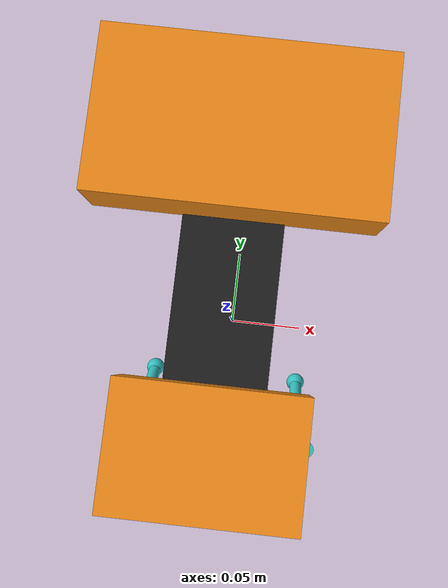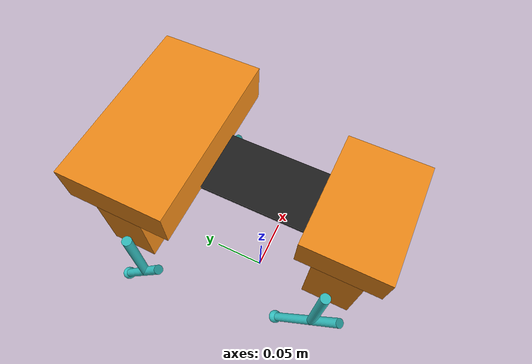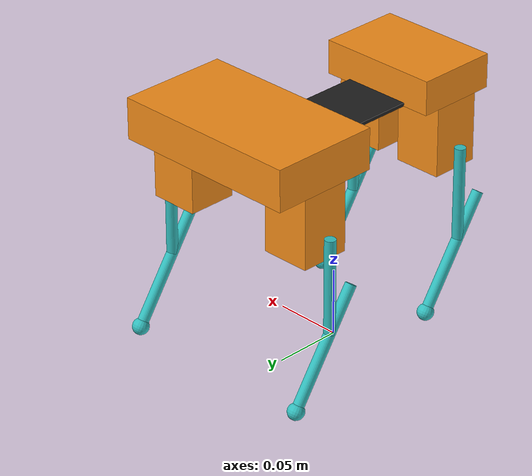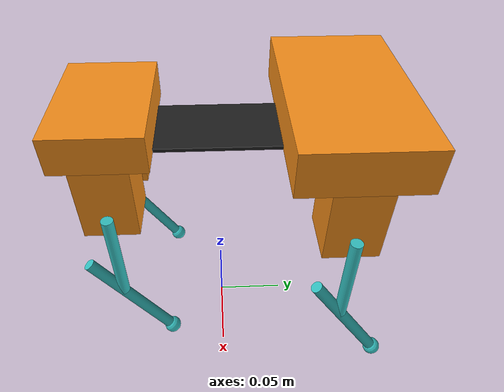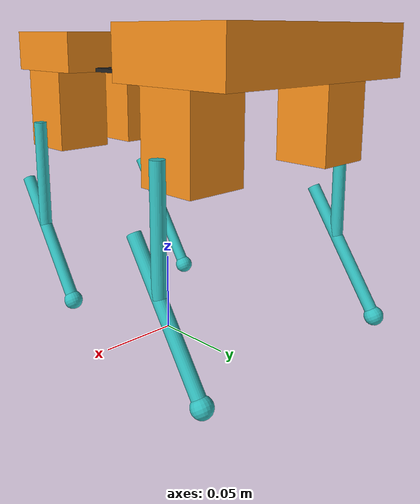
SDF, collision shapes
<?xml version='1.0' encoding='ASCII'?>
<sdf version="1.4">
  <model name="tigrillo">
    <static>False</static>
    <self_collide>False</self_collide>
    <link name="body_front">
      <pose>0 0.08 0.185 0 0 0</pose>
      <inertial>
        <mass>0.3</mass>
        <inertia>
          <ixx>0.0001825</ixx>
          <ixy>0</ixy>
          <ixz>0</ixz>
          <iyy>0.0005125</iyy>
          <iyz>0</iyz>
          <izz>0.00065</izz>
        </inertia>
      </inertial>
      <collision name="body_frontcol">
        <geometry>
          <box>
            <size>0.14 0.08 0.03</size>
          </box>
        </geometry>
      </collision>
      <visual name="body_frontvis">
        <pose>0 0.018 -0.018 0 0 -1.57079632679</pose>
        <geometry>
          <mesh>
            <uri>model://tigrillo/meshes/front.dae</uri>
            <scale>0.001 0.001 0.001</scale>
          </mesh>
        </geometry>
        <material>
          <script>
            <uri>file://media/materials/scripts/gazebo.material</uri>
            <name>Gazebo/Orange</name>
          </script>
        </material>
      </visual>
    </link>
    <link name="body_middle">
      <pose>0 0 0.17125 0 0 0</pose>
      <inertial>
        <mass>0.03</mass>
        <inertia>
          <ixx>1.6015625e-05</ixx>
          <ixy>0</ixy>
          <ixz>0</ixz>
          <iyy>6.265625e-06</iyy>
          <iyz>0</iyz>
          <izz>2.225e-05</izz>
        </inertia>
      </inertial>
      <collision name="body_middlecol">
        <geometry>
          <box>
            <size>0.05 0.08 0.0025</size>
          </box>
        </geometry>
      </collision>
      <visual name="body_middlevis">
        <pose>0 0 -0.004 0 0 -1.57079632679</pose>
        <geometry>
          <mesh>
            <uri>model://tigrillo/meshes/middle.dae</uri>
            <scale>0.001 0.001 0.001</scale>
          </mesh>
        </geometry>
        <material>
          <script>
            <uri>file://media/materials/scripts/gazebo.material</uri>
            <name>Gazebo/FlatBlack</name>
          </script>
        </material>
      </visual>
    </link>
    <link name="body_hind">
      <pose>0 -0.07 0.1825 0 0 0</pose>
      <inertial>
        <mass>0.1</mass>
        <inertia>
          <ixx>3.52083333333e-05</ixx>
          <ixy>0</ixy>
          <ixz>0</ixz>
          <iyy>7.27083333333e-05</iyy>
          <iyz>0</iyz>
          <izz>9.75e-05</izz>
        </inertia>
      </inertial>
      <collision name="body_hindcol">
        <geometry>
          <box>
            <size>0.09 0.06 0.025</size>
          </box>
        </geometry>
      </collision>
      <visual name="body_hindvis">
        <pose>0 0 -0.016 0 0 -1.57079632679</pose>
        <geometry>
          <mesh>
            <uri>model://tigrillo/meshes/hind.dae</uri>
            <scale>0.001 0.0009 0.001</scale>
          </mesh>
        </geometry>
        <material>
          <script>
            <uri>file://media/materials/scripts/gazebo.material</uri>
            <name>Gazebo/Orange</name>
          </script>
        </material>
      </visual>
    </link>
    <link name="BLM">
      <pose>-0.027 -0.07 0.1447 0 0 0</pose>
      <inertial>
        <mass>0.067</mass>
        <inertia>
          <ixx>2.15313433333e-05</ixx>
          <ixy>0</ixy>
          <ixz>0</ixz>
          <iyy>2.15313433333e-05</iyy>
          <iyz>0</iyz>
          <izz>1.4472e-05</izz>
        </inertia>
      </inertial>
      <collision name="BLM_col">
        <geometry>
          <box>
            <size>0.036 0.036 0.0506</size>
          </box>
        </geometry>
      </collision>
      <visual name="BLM_vis">
        <pose>0 0 0 -1.57079632679 0 1.57079632679</pose>
        <geometry>
          <mesh>
            <uri>model://tigrillo/meshes/motor.dae</uri>
            <scale>0.001 0.001 0.001</scale>
          </mesh>
        </geometry>
        <material>
          <script>
            <uri>file://media/materials/scripts/gazebo.material</uri>
            <name>Gazebo/Orange</name>
          </script>
        </material>
      </visual>
    </link>
    <link name="BLU">
      <pose>-0.0495 -0.07 0.137 0.00436332312999 0 0</pose>
      <inertial>
        <pose>0 0 -0.035 0 0 0</pose>
        <mass>0.351858377202</mass>
        <inertia>
          <ixx>0.000145082937533</ixx>
          <ixy>0</ixy>
          <ixz>0</ixz>
          <iyy>0.000145082937533</iyy>
          <iyz>0</iyz>
          <izz>2.81486701762e-06</izz>
        </inertia>
      </inertial>
      <collision name="BLU_col">
        <pose>0 0 -0.035 0 0 0</pose>
        <geometry>
          <cylinder>
            <radius>0.004</radius>
            <length>0.07</length>
          </cylinder>
        </geometry>
      </collision>
      <visual name="BLU_vis">
        <pose>-0.0040 0 0 0 1.57079632679 0</pose>
        <geometry>
          <mesh>
            <uri>model://tigrillo/meshes/femur.dae</uri>
            <scale>0.001 0.001 0.001</scale>
          </mesh>
        </geometry>
        <material>
          <script>
            <uri>file://media/materials/scripts/gazebo.material</uri>
            <name>Gazebo/Turquoise</name>
          </script>
        </material>
      </visual>
    </link>
    <link name="BLD">
      <pose>-0.0495 -0.0696945683501 0.0670006663495 0.590048866587 0 0</pose>
      <inertial>
        <pose>0 0 -0.01 0 0 0</pose>
        <mass>0.452389342117</mass>
        <inertia>
          <ixx>0.000307172363297</ixx>
          <ixy>0</ixy>
          <ixz>0</ixz>
          <iyy>0.000307172363297</iyy>
          <iyz>0</iyz>
          <izz>3.61911473694e-06</izz>
        </inertia>
      </inertial>
      <collision name="BLDT_col">
        <pose>0 0 -0.01 0 0 0</pose>
        <geometry>
          <cylinder>
            <radius>0.004</radius>
            <length>0.09</length>
          </cylinder>
        </geometry>
      </collision>
      <visual name="BLDT_vis">
        <pose>0.004 0 -0.048-1.57079632679 0 1.57079632679</pose>
        <geometry>
          <mesh>
            <uri>model://tigrillo/meshes/tibia.dae</uri>
            <scale>0.001 0.001 0.001</scale>
          </mesh>
        </geometry>
        <material>
          <script>
            <name>Gazebo/Turquoise</name>
            <uri>file://media/materials/scripts/gazebo.material</uri>
          </script>
        </material>
      </visual>
      <collision name="BLDF_col">
        <pose> 0 0 -0.055 0 0 0</pose>
        <geometry>
          <sphere>
            <radius>0.006</radius>
          </sphere>
        </geometry>
        <surface>
          <friction>
            <ode>
              <mu>15000</mu>
              <mu2>15000</mu2>
            </ode>
          </friction>
          <contact>
            <ode>
              <min_depth>0.0005</min_depth>
            </ode>
          </contact>
        </surface>
      </collision>
    </link>
    <link name="FRM">
      <pose>0.052 0.08 0.1447 0 0 0</pose>
      <inertial>
        <mass>0.067</mass>
        <inertia>
          <ixx>2.15313433333e-05</ixx>
          <ixy>0</ixy>
          <ixz>0</ixz>
          <iyy>2.15313433333e-05</iyy>
          <iyz>0</iyz>
          <izz>1.4472e-05</izz>
        </inertia>
      </inertial>
      <collision name="FRM_col">
        <geometry>
          <box>
            <size>0.036 0.036 0.0506</size>
          </box>
        </geometry>
      </collision>
      <visual name="FRM_vis">
        <pose>0 0 0 -1.57079632679 0 -1.57079632679</pose>
        <geometry>
          <mesh>
            <uri>model://tigrillo/meshes/motor.dae</uri>
            <scale>0.001 0.001 0.001</scale>
          </mesh>
        </geometry>
        <material>
          <script>
            <uri>file://media/materials/scripts/gazebo.material</uri>
            <name>Gazebo/Orange</name>
          </script>
        </material>
      </visual>
    </link>
    <link name="FRU">
      <pose>0.0745 0.08 0.137 0.00436332312999 0 0</pose>
      <inertial>
        <pose>0 0 -0.035 0 0 0</pose>
        <mass>0.351858377202</mass>
        <inertia>
          <ixx>0.000145082937533</ixx>
          <ixy>0</ixy>
          <ixz>0</ixz>
          <iyy>0.000145082937533</iyy>
          <iyz>0</iyz>
          <izz>2.81486701762e-06</izz>
        </inertia>
      </inertial>
      <collision name="FRU_col">
        <pose>0 0 -0.035 0 0 0</pose>
        <geometry>
          <cylinder>
            <radius>0.004</radius>
            <length>0.07</length>
          </cylinder>
        </geometry>
      </collision>
      <visual name="FRU_vis">
        <pose>-0.0040 0 0 0 1.57079632679 0</pose>
        <geometry>
          <mesh>
            <uri>model://tigrillo/meshes/femur.dae</uri>
            <scale>0.001 0.001 0.001</scale>
          </mesh>
        </geometry>
        <material>
          <script>
            <uri>file://media/materials/scripts/gazebo.material</uri>
            <name>Gazebo/Turquoise</name>
          </script>
        </material>
      </visual>
    </link>
    <link name="FRD">
      <pose>0.0745 0.0803054316499 0.0670006663495 0.590048866587 0 0</pose>
      <inertial>
        <pose>0 0 -0.01 0 0 0</pose>
        <mass>0.452389342117</mass>
        <inertia>
          <ixx>0.000307172363297</ixx>
          <ixy>0</ixy>
          <ixz>0</ixz>
          <iyy>0.000307172363297</iyy>
          <iyz>0</iyz>
          <izz>3.61911473694e-06</izz>
        </inertia>
      </inertial>
      <collision name="FRDT_col">
        <pose>0 0 -0.01 0 0 0</pose>
        <geometry>
          <cylinder>
            <radius>0.004</radius>
            <length>0.09</length>
          </cylinder>
        </geometry>
      </collision>
      <visual name="FRDT_vis">
        <pose>0.004 0 -0.048-1.57079632679 0 1.57079632679</pose>
        <geometry>
          <mesh>
            <uri>model://tigrillo/meshes/tibia.dae</uri>
            <scale>0.001 0.001 0.001</scale>
          </mesh>
        </geometry>
        <material>
          <script>
            <name>Gazebo/Turquoise</name>
            <uri>file://media/materials/scripts/gazebo.material</uri>
          </script>
        </material>
      </visual>
      <collision name="FRDF_col">
        <pose> 0 0 -0.055 0 0 0</pose>
        <geometry>
          <sphere>
            <radius>0.006</radius>
          </sphere>
        </geometry>
        <surface>
          <friction>
            <ode>
              <mu>15000</mu>
              <mu2>15000</mu2>
            </ode>
          </friction>
          <contact>
            <ode>
              <min_depth>0.0005</min_depth>
            </ode>
          </contact>
        </surface>
      </collision>
    </link>
    <link name="FLM">
      <pose>-0.052 0.08 0.1447 0 0 0</pose>
      <inertial>
        <mass>0.067</mass>
        <inertia>
          <ixx>2.15313433333e-05</ixx>
          <ixy>0</ixy>
          <ixz>0</ixz>
          <iyy>2.15313433333e-05</iyy>
          <iyz>0</iyz>
          <izz>1.4472e-05</izz>
        </inertia>
      </inertial>
      <collision name="FLM_col">
        <geometry>
          <box>
            <size>0.036 0.036 0.0506</size>
          </box>
        </geometry>
      </collision>
      <visual name="FLM_vis">
        <pose>0 0 0 -1.57079632679 0 1.57079632679</pose>
        <geometry>
          <mesh>
            <uri>model://tigrillo/meshes/motor.dae</uri>
            <scale>0.001 0.001 0.001</scale>
          </mesh>
        </geometry>
        <material>
          <script>
            <uri>file://media/materials/scripts/gazebo.material</uri>
            <name>Gazebo/Orange</name>
          </script>
        </material>
      </visual>
    </link>
    <link name="FLU">
      <pose>-0.0745 0.08 0.137 0.00436332312999 0 0</pose>
      <inertial>
        <pose>0 0 -0.035 0 0 0</pose>
        <mass>0.351858377202</mass>
        <inertia>
          <ixx>0.000145082937533</ixx>
          <ixy>0</ixy>
          <ixz>0</ixz>
          <iyy>0.000145082937533</iyy>
          <iyz>0</iyz>
          <izz>2.81486701762e-06</izz>
        </inertia>
      </inertial>
      <collision name="FLU_col">
        <pose>0 0 -0.035 0 0 0</pose>
        <geometry>
          <cylinder>
            <radius>0.004</radius>
            <length>0.07</length>
          </cylinder>
        </geometry>
      </collision>
      <visual name="FLU_vis">
        <pose>-0.0040 0 0 0 1.57079632679 0</pose>
        <geometry>
          <mesh>
            <uri>model://tigrillo/meshes/femur.dae</uri>
            <scale>0.001 0.001 0.001</scale>
          </mesh>
        </geometry>
        <material>
          <script>
            <uri>file://media/materials/scripts/gazebo.material</uri>
            <name>Gazebo/Turquoise</name>
          </script>
        </material>
      </visual>
    </link>
    <link name="FLD">
      <pose>-0.0745 0.0803054316499 0.0670006663495 0.590048866587 0 0</pose>
      <inertial>
        <pose>0 0 -0.01 0 0 0</pose>
        <mass>0.452389342117</mass>
        <inertia>
          <ixx>0.000307172363297</ixx>
          <ixy>0</ixy>
          <ixz>0</ixz>
          <iyy>0.000307172363297</iyy>
          <iyz>0</iyz>
          <izz>3.61911473694e-06</izz>
        </inertia>
      </inertial>
      <collision name="FLDT_col">
        <pose>0 0 -0.01 0 0 0</pose>
        <geometry>
          <cylinder>
            <radius>0.004</radius>
            <length>0.09</length>
          </cylinder>
        </geometry>
      </collision>
      <visual name="FLDT_vis">
        <pose>0.004 0 -0.048-1.57079632679 0 1.57079632679</pose>
        <geometry>
          <mesh>
            <uri>model://tigrillo/meshes/tibia.dae</uri>
            <scale>0.001 0.001 0.001</scale>
          </mesh>
        </geometry>
        <material>
          <script>
            <name>Gazebo/Turquoise</name>
            <uri>file://media/materials/scripts/gazebo.material</uri>
          </script>
        </material>
      </visual>
      <collision name="FLDF_col">
        <pose> 0 0 -0.055 0 0 0</pose>
        <geometry>
          <sphere>
            <radius>0.006</radius>
          </sphere>
        </geometry>
        <surface>
          <friction>
            <ode>
              <mu>15000</mu>
              <mu2>15000</mu2>
            </ode>
          </friction>
          <contact>
            <ode>
              <min_depth>0.0005</min_depth>
            </ode>
          </contact>
        </surface>
      </collision>
    </link>
    <link name="BRM">
      <pose>0.027 -0.07 0.1447 0 0 0</pose>
      <inertial>
        <mass>0.067</mass>
        <inertia>
          <ixx>2.15313433333e-05</ixx>
          <ixy>0</ixy>
          <ixz>0</ixz>
          <iyy>2.15313433333e-05</iyy>
          <iyz>0</iyz>
          <izz>1.4472e-05</izz>
        </inertia>
      </inertial>
      <collision name="BRM_col">
        <geometry>
          <box>
            <size>0.036 0.036 0.0506</size>
          </box>
        </geometry>
      </collision>
      <visual name="BRM_vis">
        <pose>0 0 0 -1.57079632679 0 -1.57079632679</pose>
        <geometry>
          <mesh>
            <uri>model://tigrillo/meshes/motor.dae</uri>
            <scale>0.001 0.001 0.001</scale>
          </mesh>
        </geometry>
        <material>
          <script>
            <uri>file://media/materials/scripts/gazebo.material</uri>
            <name>Gazebo/Orange</name>
          </script>
        </material>
      </visual>
    </link>
    <link name="BRU">
      <pose>0.0495 -0.07 0.137 0.00436332312999 0 0</pose>
      <inertial>
        <pose>0 0 -0.035 0 0 0</pose>
        <mass>0.351858377202</mass>
        <inertia>
          <ixx>0.000145082937533</ixx>
          <ixy>0</ixy>
          <ixz>0</ixz>
          <iyy>0.000145082937533</iyy>
          <iyz>0</iyz>
          <izz>2.81486701762e-06</izz>
        </inertia>
      </inertial>
      <collision name="BRU_col">
        <pose>0 0 -0.035 0 0 0</pose>
        <geometry>
          <cylinder>
            <radius>0.004</radius>
            <length>0.07</length>
          </cylinder>
        </geometry>
      </collision>
      <visual name="BRU_vis">
        <pose>-0.0040 0 0 0 1.57079632679 0</pose>
        <geometry>
          <mesh>
            <uri>model://tigrillo/meshes/femur.dae</uri>
            <scale>0.001 0.001 0.001</scale>
          </mesh>
        </geometry>
        <material>
          <script>
            <uri>file://media/materials/scripts/gazebo.material</uri>
            <name>Gazebo/Turquoise</name>
          </script>
        </material>
      </visual>
    </link>
    <link name="BRD">
      <pose>0.0495 -0.0696945683501 0.0670006663495 0.590048866587 0 0</pose>
      <inertial>
        <pose>0 0 -0.01 0 0 0</pose>
        <mass>0.452389342117</mass>
        <inertia>
          <ixx>0.000307172363297</ixx>
          <ixy>0</ixy>
          <ixz>0</ixz>
          <iyy>0.000307172363297</iyy>
          <iyz>0</iyz>
          <izz>3.61911473694e-06</izz>
        </inertia>
      </inertial>
      <collision name="BRDT_col">
        <pose>0 0 -0.01 0 0 0</pose>
        <geometry>
          <cylinder>
            <radius>0.004</radius>
            <length>0.09</length>
          </cylinder>
        </geometry>
      </collision>
      <visual name="BRDT_vis">
        <pose>0.004 0 -0.048-1.57079632679 0 1.57079632679</pose>
        <geometry>
          <mesh>
            <uri>model://tigrillo/meshes/tibia.dae</uri>
            <scale>0.001 0.001 0.001</scale>
          </mesh>
        </geometry>
        <material>
          <script>
            <name>Gazebo/Turquoise</name>
            <uri>file://media/materials/scripts/gazebo.material</uri>
          </script>
        </material>
      </visual>
      <collision name="BRDF_col">
        <pose> 0 0 -0.055 0 0 0</pose>
        <geometry>
          <sphere>
            <radius>0.006</radius>
          </sphere>
        </geometry>
        <surface>
          <friction>
            <ode>
              <mu>15000</mu>
              <mu2>15000</mu2>
            </ode>
          </friction>
          <contact>
            <ode>
              <min_depth>0.0005</min_depth>
            </ode>
          </contact>
        </surface>
      </collision>
    </link>
    <joint name="body_front_J" type="fixed">
      <parent>body_middle</parent>
      <child>body_front</child>
    </joint>
    <joint name="body_hind_J" type="fixed">
      <parent>body_middle</parent>
      <child>body_hind</child>
    </joint>
    <joint name="BLMJ" type="fixed">
      <parent>body_hind</parent>
      <child>BLM</child>
    </joint>
    <joint name="BLUJ" type="revolute">
      <parent>BLM</parent>
      <child>BLU</child>
      <axis>
        <xyz>1 0 0</xyz>
        <limit>
          <lower>-1.57515964992</lower>
          <upper>1.56643300366</upper>
        </limit>
      </axis>
    </joint>
    <joint name="BLDJ" type="revolute">
      <parent>BLU</parent>
      <child>BLD</child>
      <axis>
        <xyz>1 0 0</xyz>
        <dynamics>
          <damping>0.08</damping>
          <spring_stiffness>0.590685684903</spring_stiffness>
        </dynamics>
        <limit>
          <lower>0.272951133413</lower>
          <upper>1.57079632679</upper>
        </limit>
      </axis>
    </joint>
    <joint name="FRMJ" type="fixed">
      <parent>body_front</parent>
      <child>FRM</child>
    </joint>
    <joint name="FRUJ" type="revolute">
      <parent>FRM</parent>
      <child>FRU</child>
      <axis>
        <xyz>1 0 0</xyz>
        <limit>
          <lower>-1.57515964992</lower>
          <upper>1.56643300366</upper>
        </limit>
      </axis>
    </joint>
    <joint name="FRDJ" type="revolute">
      <parent>FRU</parent>
      <child>FRD</child>
      <axis>
        <xyz>1 0 0</xyz>
        <dynamics>
          <damping>0.01</damping>
          <spring_stiffness>0.701804774142</spring_stiffness>
        </dynamics>
        <limit>
          <lower>0.394951133413</lower>
          <upper>1.57079632679</upper>
        </limit>
      </axis>
    </joint>
    <joint name="FLMJ" type="fixed">
      <parent>body_front</parent>
      <child>FLM</child>
    </joint>
    <joint name="FLUJ" type="revolute">
      <parent>FLM</parent>
      <child>FLU</child>
      <axis>
        <xyz>1 0 0</xyz>
        <limit>
          <lower>-1.57515964992</lower>
          <upper>1.56643300366</upper>
        </limit>
      </axis>
    </joint>
    <joint name="FLDJ" type="revolute">
      <parent>FLU</parent>
      <child>FLD</child>
      <axis>
        <xyz>1 0 0</xyz>
        <dynamics>
          <damping>0.01</damping>
          <spring_stiffness>0.350902387071</spring_stiffness>
        </dynamics>
        <limit>
          <lower>0.269951133413</lower>
          <upper>1.57079632679</upper>
        </limit>
      </axis>
    </joint>
    <joint name="BRMJ" type="fixed">
      <parent>body_hind</parent>
      <child>BRM</child>
    </joint>
    <joint name="BRUJ" type="revolute">
      <parent>BRM</parent>
      <child>BRU</child>
      <axis>
        <xyz>1 0 0</xyz>
        <limit>
          <lower>-1.57515964992</lower>
          <upper>1.56643300366</upper>
        </limit>
      </axis>
    </joint>
    <joint name="BRDJ" type="revolute">
      <parent>BRU</parent>
      <child>BRD</child>
      <axis>
        <xyz>1 0 0</xyz>
        <dynamics>
          <damping>0.12</damping>
          <spring_stiffness>0.649169416081</spring_stiffness>
        </dynamics>
        <limit>
          <lower>0.349951133413</lower>
          <upper>1.57079632679</upper>
        </limit>
      </axis>
    </joint>
    <plugin filename="libtigrillo_2_plugin.so" name="TigrilloPlugin">
      <p>50.0</p>
      <i>0.01</i>
      <d>0.01</d>
    </plugin>
    <plugin filename="libgazebo_ros_imu.so" name="ImuPlugin">
      <alwaysOn>true</alwaysOn>
      <bodyName>body_front</bodyName>
      <topicName>imu_data</topicName>
      <serviceName>imu_service</serviceName>
      <gaussianNoise>0.0</gaussianNoise>
      <updateRate>20.0</updateRate>
    </plugin>
  </model>
</sdf>
